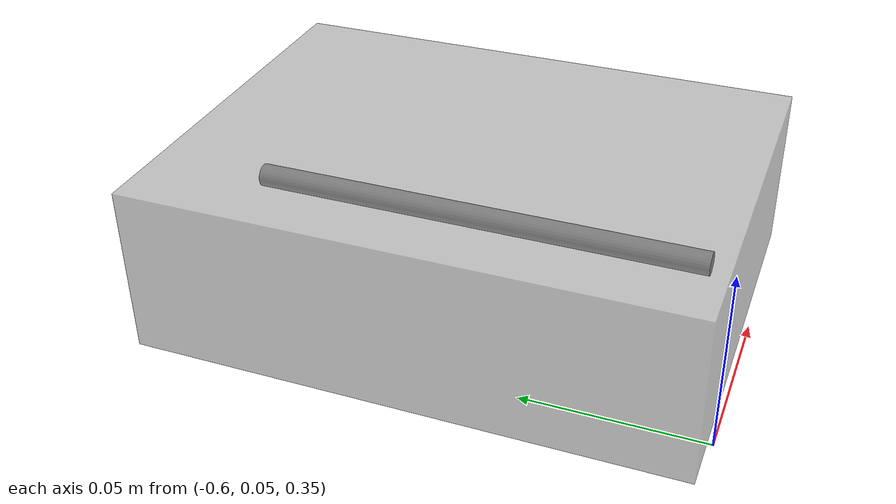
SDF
<sdf version='1.9'>
  <world name='empty'>
    <physics name='1ms' type='ignored'>
      <max_step_size>0.001</max_step_size>
      <real_time_factor>1</real_time_factor>
      <real_time_update_rate>1000</real_time_update_rate>
    </physics>

    <plugin name='gz::sim::systems::Physics' filename='ignition-gazebo-physics-system'/>
    <plugin name='gz::sim::systems::UserCommands' filename='ignition-gazebo-user-commands-system'/>
    <plugin name='gz::sim::systems::SceneBroadcaster' filename='ignition-gazebo-scene-broadcaster-system'/>
    <plugin name='gz::sim::systems::Contact' filename='ignition-gazebo-contact-system'/>
    <plugin name="ignition::gazebo::systems::ForceTorque" filename="ignition-gazebo-forcetorque-system"/>

    <gravity>0 0 -9.8</gravity>

    <plugin filename="us_system" name="us_system">
      <PlusConfig> config-ismr.xml </PlusConfig>
    </plugin>

    <scene>
      <ambient>0.4 0.4 0.4 1</ambient>
      <background>0.7 0.7 0.7 1</background>
      <shadows>true</shadows>
    </scene>

    <model name='ground_plane'>
      <static>true</static>
      <link name='link'>
	<collision name='collision'>
          <geometry>
            <plane>
              <normal>0 0 1</normal>
              <size>100 100</size>
            </plane>
          </geometry>
          <surface>
            <friction>
              <ode/>
            </friction>
            <bounce/>
            <contact/>
          </surface>
        </collision>
        <visual name='visual'>
          <geometry>
            <plane>
              <normal>0 0 1</normal>
              <size>100 100</size>
            </plane>
          </geometry>
          <material>
            <ambient>0.8 0.8 0.8 1</ambient>
            <diffuse>0.8 0.8 0.8 1</diffuse>
            <specular>0.8 0.8 0.8 1</specular>
          </material>
        </visual>
        <pose>0 0 0 0 -0 0</pose>
        <inertial>
          <pose>0 0 0 0 -0 0</pose>
          <mass>1</mass>
          <inertia>
            <ixx>1</ixx>
            <ixy>0</ixy>
            <ixz>0</ixz>
            <iyy>1</iyy>
            <iyz>0</iyz>
            <izz>1</izz>
          </inertia>
        </inertial>
        <enable_wind>false</enable_wind>
      </link>
      <pose>0 0 0 0 -0 0</pose>
      <self_collide>false</self_collide>
    </model>

    <include>
      <uri>model://gel_block</uri>
      <name>block</name>
      <pose>-0.542 0.133 0.36275 0 0 0</pose>
    </include>

    <include>
      <uri>model://vessel</uri>
      <name>vessel</name>
      <pose>-0.542 0.133 0.36275 0 0 0</pose>
    </include>

    <light name='sun' type='directional'>
      <pose>0 0 10 0 -0 0</pose>
      <cast_shadows>true</cast_shadows>
      <intensity>1</intensity>
      <direction>-0.5 0.1 -0.9</direction>
      <diffuse>0.8 0.8 0.8 1</diffuse>
      <specular>0.2 0.2 0.2 1</specular>
      <attenuation>
        <range>1000</range>
        <linear>0.01</linear>
        <constant>0.90000000000000002</constant>
        <quadratic>0.001</quadratic>
      </attenuation>
      <spot>
        <inner_angle>0</inner_angle>
        <outer_angle>0</outer_angle>
        <falloff>0</falloff>
      </spot>
    </light>
  </world>
</sdf>

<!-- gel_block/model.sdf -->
<sdf version="1.5">
    <model name="gel_block">
      <static>true</static>
      <link name="block">
        <pose>0 0 0 0 0 0</pose>
        <collision name="block_collision">
          <geometry>
            <mesh>
              <uri>model://gel_block/meshes/gel_block.stl</uri>
              <scale>0.001 0.001 0.001</scale>
            </mesh>
          </geometry>
        </collision>
        <visual name="block_visual">
          <transparency>0.5</transparency>
          <geometry>
            <mesh>
              <uri>model://gel_block/meshes/gel_block.stl</uri>
              <scale>0.001 0.001 0.001</scale>
            </mesh>
          </geometry>
          <cast_shadows>true</cast_shadows>
	  <material> <!-- Wheel material -->
            <ambient>0.5 0.5 0.5 1</ambient>
            <diffuse>0.5 0.5 0.5 1</diffuse>
            <specular>0.1 0.1 0.1 0</specular>
            <emissive>0 0 0 1</emissive>
          </material>
        </visual>
      </link>
      <static>true</static>
    </model>
</sdf>

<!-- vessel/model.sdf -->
<sdf version="1.5">
    <model name="vessel">
      <link name="vessel_link">
        <pose>0 0 0 0 0 0</pose>
        <collision name="vessel_collision">
          <geometry>
            <mesh>
              <uri>model://vessel/meshes/vessel.stl</uri>
              <scale>0.001 0.001 0.001</scale>
            </mesh>
          </geometry>
        </collision>
        <visual name="vessel_visual">
          <geometry>
            <mesh>
              <uri>model://vessel/meshes/vessel.stl</uri>
              <scale>0.001 0.001 0.001</scale>
            </mesh>
          </geometry>
          <cast_shadows>true</cast_shadows>
	  <material> <!-- Wheel material -->
            <ambient>0.0 0.0 0.5 1</ambient>
            <diffuse>0.5 0.5 0.5 1</diffuse>
            <specular>0.1 0.1 0.1 0</specular>
            <emissive>0 0 0 1</emissive>
          </material>
        </visual>
      </link>
      <static>true</static>
    </model>
</sdf>
